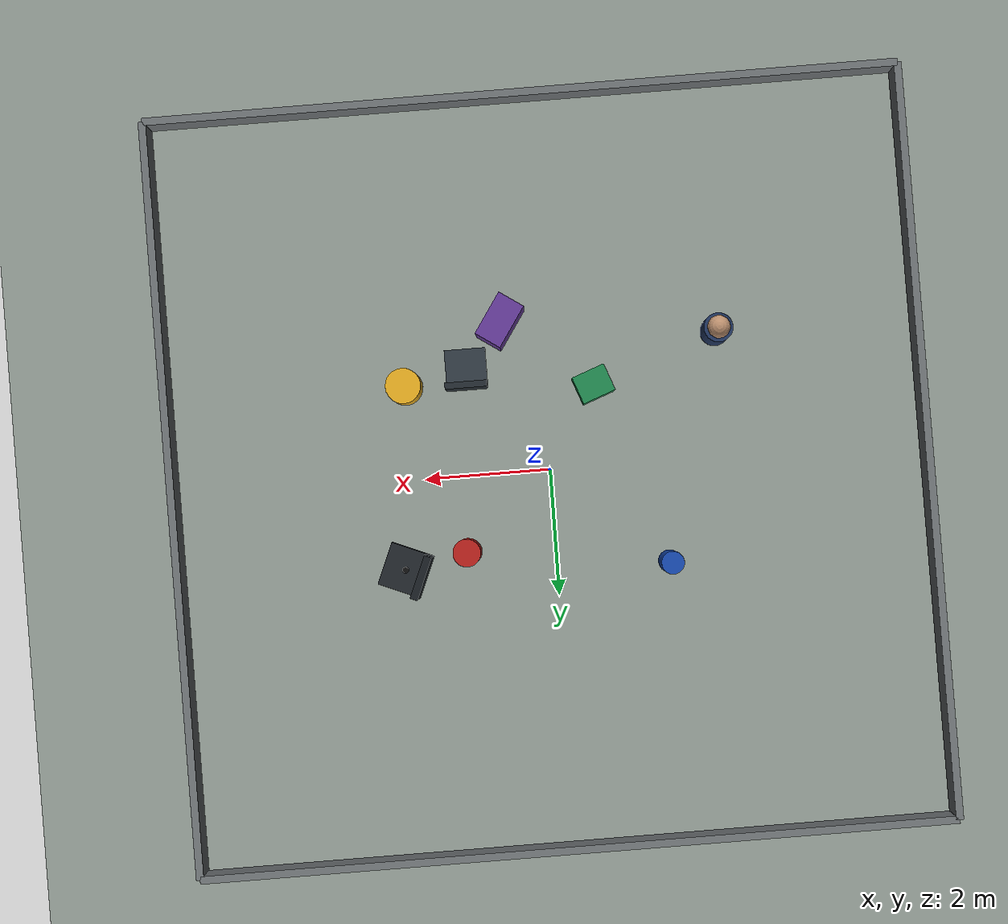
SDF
<?xml version="1.0" ?>
<sdf version="1.9">
  <world name="real_objects_world">
    <physics name="1ms" type="ignored">
      <max_step_size>0.001</max_step_size>
      <real_time_factor>1.0</real_time_factor>
    </physics>

    <plugin
      filename="gz-sim-physics-system"
      name="gz::sim::systems::Physics" />
    <plugin
      filename="gz-sim-scene-broadcaster-system"
      name="gz::sim::systems::SceneBroadcaster" />
    <plugin
      filename="gz-sim-user-commands-system"
      name="gz::sim::systems::UserCommands" />
    <plugin
      filename="gz-sim-sensors-system"
      name="gz::sim::systems::Sensors">
      <render_engine>ogre2</render_engine>
    </plugin>
    <plugin
      filename="gz-sim-imu-system"
      name="gz::sim::systems::Imu" />

    <light name="sun" type="directional">
      <cast_shadows>true</cast_shadows>
      <pose>0 0 10 0 0 0</pose>
      <diffuse>0.85 0.85 0.82 1</diffuse>
      <specular>0.2 0.2 0.2 1</specular>
      <attenuation>
        <range>1000</range>
        <constant>0.9</constant>
        <linear>0.01</linear>
        <quadratic>0.001</quadratic>
      </attenuation>
      <direction>-0.5 0.1 -0.9</direction>
    </light>

    <model name="ground_plane">
      <static>true</static>
      <link name="link">
        <collision name="collision">
          <geometry>
            <plane>
              <normal>0 0 1</normal>
              <size>25 25</size>
            </plane>
          </geometry>
        </collision>
        <visual name="visual">
          <geometry>
            <plane>
              <normal>0 0 1</normal>
              <size>25 25</size>
            </plane>
          </geometry>
          <material>
            <ambient>0.55 0.59 0.56 1</ambient>
            <diffuse>0.55 0.59 0.56 1</diffuse>
          </material>
        </visual>
      </link>
    </model>

    <model name="arena_boundary_north">
      <static>true</static>
      <pose>0 6.0 0.25 0 0 0</pose>
      <link name="link">
        <collision name="collision">
          <geometry><box><size>12.0 0.12 0.50</size></box></geometry>
        </collision>
        <visual name="visual">
          <geometry><box><size>12.0 0.12 0.50</size></box></geometry>
          <material><ambient>0.42 0.44 0.45 1</ambient><diffuse>0.42 0.44 0.45 1</diffuse></material>
        </visual>
      </link>
    </model>

    <model name="arena_boundary_south">
      <static>true</static>
      <pose>0 -6.0 0.25 0 0 0</pose>
      <link name="link">
        <collision name="collision">
          <geometry><box><size>12.0 0.12 0.50</size></box></geometry>
        </collision>
        <visual name="visual">
          <geometry><box><size>12.0 0.12 0.50</size></box></geometry>
          <material><ambient>0.42 0.44 0.45 1</ambient><diffuse>0.42 0.44 0.45 1</diffuse></material>
        </visual>
      </link>
    </model>

    <model name="arena_boundary_east">
      <static>true</static>
      <pose>6.0 0 0.25 0 0 0</pose>
      <link name="link">
        <collision name="collision">
          <geometry><box><size>0.12 12.0 0.50</size></box></geometry>
        </collision>
        <visual name="visual">
          <geometry><box><size>0.12 12.0 0.50</size></box></geometry>
          <material><ambient>0.42 0.44 0.45 1</ambient><diffuse>0.42 0.44 0.45 1</diffuse></material>
        </visual>
      </link>
    </model>

    <model name="arena_boundary_west">
      <static>true</static>
      <pose>-6.0 0 0.25 0 0 0</pose>
      <link name="link">
        <collision name="collision">
          <geometry><box><size>0.12 12.0 0.50</size></box></geometry>
        </collision>
        <visual name="visual">
          <geometry><box><size>0.12 12.0 0.50</size></box></geometry>
          <material><ambient>0.42 0.44 0.45 1</ambient><diffuse>0.42 0.44 0.45 1</diffuse></material>
        </visual>
      </link>
    </model>

    <model name="cylinder_red">
      <static>true</static>
      <pose>1.4 1.2 0.35 0 0 0</pose>
      <link name="link">
        <collision name="collision">
          <geometry><cylinder><radius>0.22</radius><length>0.70</length></cylinder></geometry>
        </collision>
        <visual name="visual">
          <geometry><cylinder><radius>0.22</radius><length>0.70</length></cylinder></geometry>
          <material><ambient>0.70 0.12 0.10 1</ambient><diffuse>0.70 0.12 0.10 1</diffuse></material>
        </visual>
      </link>
    </model>

    <model name="cylinder_blue">
      <static>true</static>
      <pose>-1.8 1.6 0.45 0 0 0</pose>
      <link name="link">
        <collision name="collision">
          <geometry><cylinder><radius>0.18</radius><length>0.90</length></cylinder></geometry>
        </collision>
        <visual name="visual">
          <geometry><cylinder><radius>0.18</radius><length>0.90</length></cylinder></geometry>
          <material><ambient>0.08 0.27 0.66 1</ambient><diffuse>0.08 0.27 0.66 1</diffuse></material>
        </visual>
      </link>
    </model>

    <model name="cylinder_yellow">
      <static>true</static>
      <pose>2.2 -1.5 0.30 0 0 0</pose>
      <link name="link">
        <collision name="collision">
          <geometry><cylinder><radius>0.28</radius><length>0.60</length></cylinder></geometry>
        </collision>
        <visual name="visual">
          <geometry><cylinder><radius>0.28</radius><length>0.60</length></cylinder></geometry>
          <material><ambient>0.88 0.66 0.12 1</ambient><diffuse>0.88 0.66 0.12 1</diffuse></material>
        </visual>
      </link>
    </model>

    <model name="box_green">
      <static>true</static>
      <pose>-0.8 -1.3 0.25 0 0 0.35</pose>
      <link name="link">
        <collision name="collision">
          <geometry><box><size>0.55 0.45 0.50</size></box></geometry>
        </collision>
        <visual name="visual">
          <geometry><box><size>0.55 0.45 0.50</size></box></geometry>
          <material><ambient>0.12 0.52 0.30 1</ambient><diffuse>0.12 0.52 0.30 1</diffuse></material>
        </visual>
      </link>
    </model>

    <model name="box_purple">
      <static>true</static>
      <pose>0.6 -2.4 0.40 0 0 -0.6</pose>
      <link name="link">
        <collision name="collision">
          <geometry><box><size>0.45 0.75 0.80</size></box></geometry>
        </collision>
        <visual name="visual">
          <geometry><box><size>0.45 0.75 0.80</size></box></geometry>
          <material><ambient>0.38 0.22 0.58 1</ambient><diffuse>0.38 0.22 0.58 1</diffuse></material>
        </visual>
      </link>
    </model>

    <model name="moving_chair">
      <pose>1.2 -1.7 0.45 0 0 -1.5708</pose>
      <link name="body">
        <gravity>false</gravity>
        <inertial>
          <mass>1.5</mass>
          <inertia>
            <ixx>0.12</ixx>
            <ixy>0</ixy>
            <ixz>0</ixz>
            <iyy>0.12</iyy>
            <iyz>0</iyz>
            <izz>0.08</izz>
          </inertia>
        </inertial>
        <velocity_decay>
          <linear>0.5</linear>
          <angular>0.8</angular>
        </velocity_decay>
        <collision name="lidar_collision">
          <geometry><box><size>0.70 0.70 0.90</size></box></geometry>
          <surface>
            <friction>
              <bullet>
                <friction>0.7</friction>
                <friction2>1.0</friction2>
                <rolling_friction>0.2</rolling_friction>
              </bullet>
            </friction>
          </surface>
        </collision>
        <visual name="seat">
          <pose>0 0 -0.18 0 0 0</pose>
          <geometry><box><size>0.65 0.65 0.10</size></box></geometry>
          <material><ambient>0.18 0.22 0.25 1</ambient><diffuse>0.18 0.22 0.25 1</diffuse></material>
        </visual>
        <visual name="back">
          <pose>-0.28 0 0.18 0 0 0</pose>
          <geometry><box><size>0.10 0.65 0.70</size></box></geometry>
          <material><ambient>0.13 0.16 0.18 1</ambient><diffuse>0.13 0.16 0.18 1</diffuse></material>
        </visual>
        <visual name="front_left_leg">
          <pose>0.22 0.22 -0.48 0 0 0</pose>
          <geometry><box><size>0.07 0.07 0.55</size></box></geometry>
          <material><ambient>0.07 0.07 0.07 1</ambient><diffuse>0.07 0.07 0.07 1</diffuse></material>
        </visual>
        <visual name="front_right_leg">
          <pose>0.22 -0.22 -0.48 0 0 0</pose>
          <geometry><box><size>0.07 0.07 0.55</size></box></geometry>
          <material><ambient>0.07 0.07 0.07 1</ambient><diffuse>0.07 0.07 0.07 1</diffuse></material>
        </visual>
        <visual name="rear_left_leg">
          <pose>-0.22 0.22 -0.48 0 0 0</pose>
          <geometry><box><size>0.07 0.07 0.55</size></box></geometry>
          <material><ambient>0.07 0.07 0.07 1</ambient><diffuse>0.07 0.07 0.07 1</diffuse></material>
        </visual>
        <visual name="rear_right_leg">
          <pose>-0.22 -0.22 -0.48 0 0 0</pose>
          <geometry><box><size>0.07 0.07 0.55</size></box></geometry>
          <material><ambient>0.07 0.07 0.07 1</ambient><diffuse>0.07 0.07 0.07 1</diffuse></material>
        </visual>
      </link>
      <plugin
        filename="xgo_glide_trajectory_system"
        name="xgo_description::systems::GlideTrajectorySystem">
        <offset>0 -3.0 0</offset>
        <period>21.2</period>
        <phase_offset>0.0</phase_offset>
        <align_yaw>true</align_yaw>
        <yaw_time_constant>0.35</yaw_time_constant>
      </plugin>
    </model>

    <model name="office_chair">
      <static>true</static>
      <pose>2.4 1.4 0.50 0 0 -0.4</pose>
      <link name="link">
        <collision name="collision">
          <geometry><box><size>0.75 0.75 1.0</size></box></geometry>
        </collision>
        <visual name="seat">
          <pose>0 0 -0.22 0 0 0</pose>
          <geometry><box><size>0.70 0.70 0.12</size></box></geometry>
          <material><ambient>0.12 0.14 0.16 1</ambient><diffuse>0.12 0.14 0.16 1</diffuse></material>
        </visual>
        <visual name="back">
          <pose>-0.30 0 0.18 0 0 0</pose>
          <geometry><box><size>0.12 0.70 0.80</size></box></geometry>
          <material><ambient>0.09 0.11 0.13 1</ambient><diffuse>0.09 0.11 0.13 1</diffuse></material>
        </visual>
        <visual name="base">
          <pose>0 0 -0.55 0 0 0</pose>
          <geometry><cylinder><radius>0.30</radius><length>0.08</length></cylinder></geometry>
          <material><ambient>0.05 0.05 0.05 1</ambient><diffuse>0.05 0.05 0.05 1</diffuse></material>
        </visual>
        <visual name="post">
          <pose>0 0 -0.35 0 0 0</pose>
          <geometry><cylinder><radius>0.05</radius><length>0.45</length></cylinder></geometry>
          <material><ambient>0.05 0.05 0.05 1</ambient><diffuse>0.05 0.05 0.05 1</diffuse></material>
        </visual>
      </link>
    </model>

    <model name="walking_person">
      <pose>-2.8 -2.0 0.45 0 0 0</pose>
      <link name="body">
        <gravity>false</gravity>
        <inertial>
          <mass>3.0</mass>
          <inertia>
            <ixx>0.16666</ixx>
            <ixy>0</ixy>
            <ixz>0</ixz>
            <iyy>0.16666</iyy>
            <iyz>0</iyz>
            <izz>0.16666</izz>
          </inertia>
        </inertial>
        <velocity_decay>
          <linear>0.5</linear>
          <angular>2.0</angular>
        </velocity_decay>
        <collision name="lidar_collision">
          <geometry><box><size>0.55 0.55 0.90</size></box></geometry>
          <surface>
            <friction>
              <bullet>
                <friction>0.7</friction>
                <friction2>1.0</friction2>
                <rolling_friction>0.2</rolling_friction>
              </bullet>
            </friction>
          </surface>
        </collision>
        <visual name="body_visual">
          <pose>0 0 0.05 0 0 0</pose>
          <geometry><cylinder><radius>0.23</radius><length>0.80</length></cylinder></geometry>
          <material>
            <ambient>0.12 0.20 0.36 1</ambient>
            <diffuse>0.12 0.20 0.36 1</diffuse>
          </material>
        </visual>
        <visual name="head_visual">
          <pose>0 0 0.55 0 0 0</pose>
          <geometry><sphere><radius>0.18</radius></sphere></geometry>
          <material>
            <ambient>0.72 0.55 0.42 1</ambient>
            <diffuse>0.72 0.55 0.42 1</diffuse>
          </material>
        </visual>
      </link>
      <plugin
        filename="xgo_glide_trajectory_system"
        name="xgo_description::systems::GlideTrajectorySystem">
        <offset>2.0 0 0</offset>
        <period>15.9</period>
        <phase_offset>3.0</phase_offset>
        <align_yaw>true</align_yaw>
        <yaw_time_constant>0.35</yaw_time_constant>
      </plugin>
    </model>

  </world>
</sdf>
